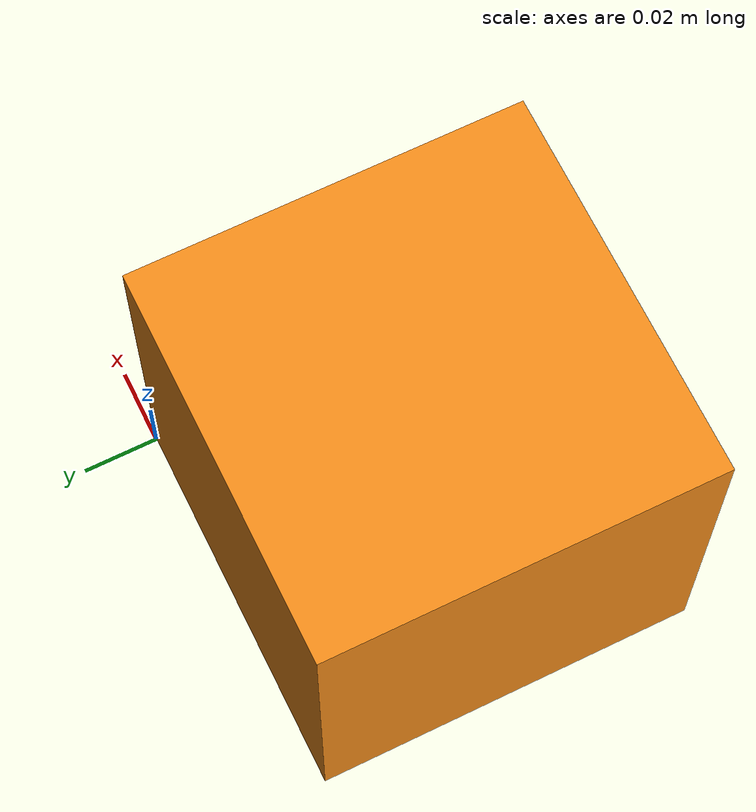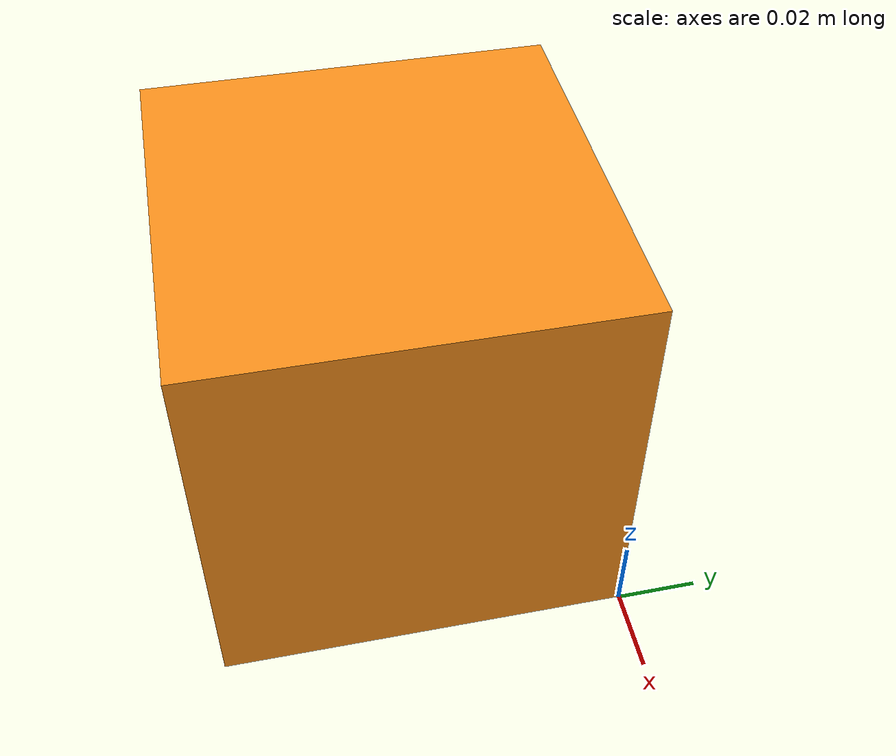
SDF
<?xml version='1.0'?>
<sdf version='1.6'>
  <model name='1cm_cube'>
    <link name='cube'>
      <pose frame=''>-0.05 -0.05 0.05 0 -0 0</pose>
      <visual name='visual'>
        <pose frame=''>0 0 0 0 -0 0</pose>
        <geometry>
          <box>
            <size>0.1 0.1 0.1</size>
          </box>
        </geometry>
        <material>
          <lighting>1</lighting>
          <script>
            <uri>file://media/materials/scripts/caution.material</uri>
            <name>Caution/Orange3</name>
          </script>
          <ambient>1 1 1 1</ambient>
        </material>
        <cast_shadows>1</cast_shadows>
        <transparency>0</transparency>
      </visual>
      <collision name='collision'>
        <geometry>
          <box>
            <size>0.1 0.1 0.1</size>
          </box>
        </geometry>
        <pose frame=''>-0.05 -0.05 0.05 0 -0 0</pose>
      </collision>
    </link>
    <static>1</static>
    <allow_auto_disable>1</allow_auto_disable>
  </model>
</sdf>
